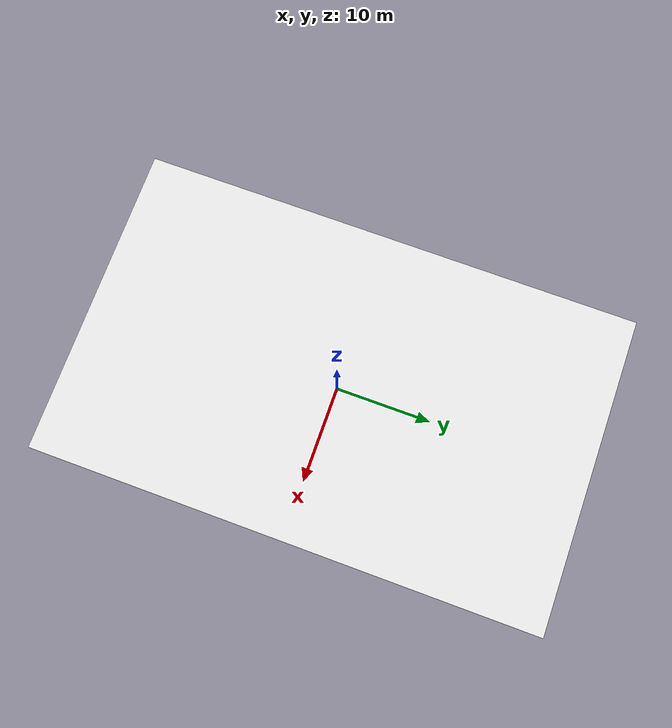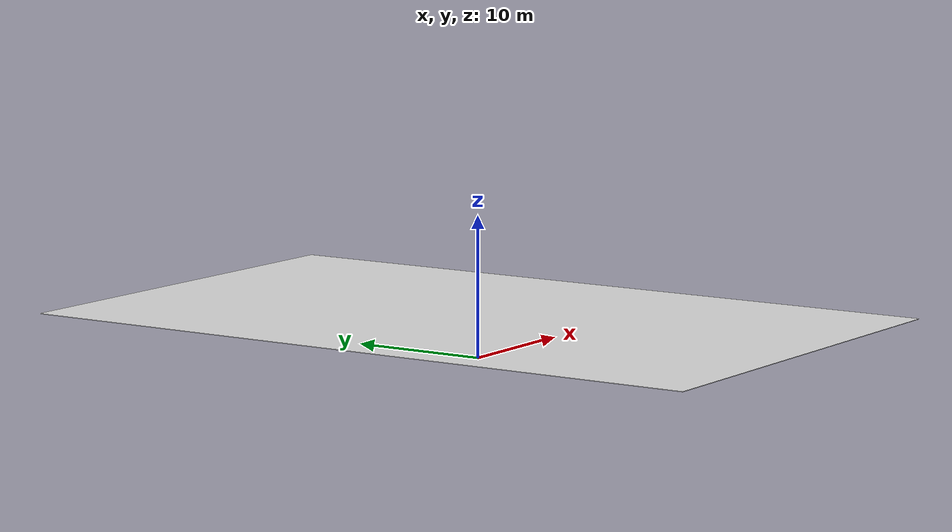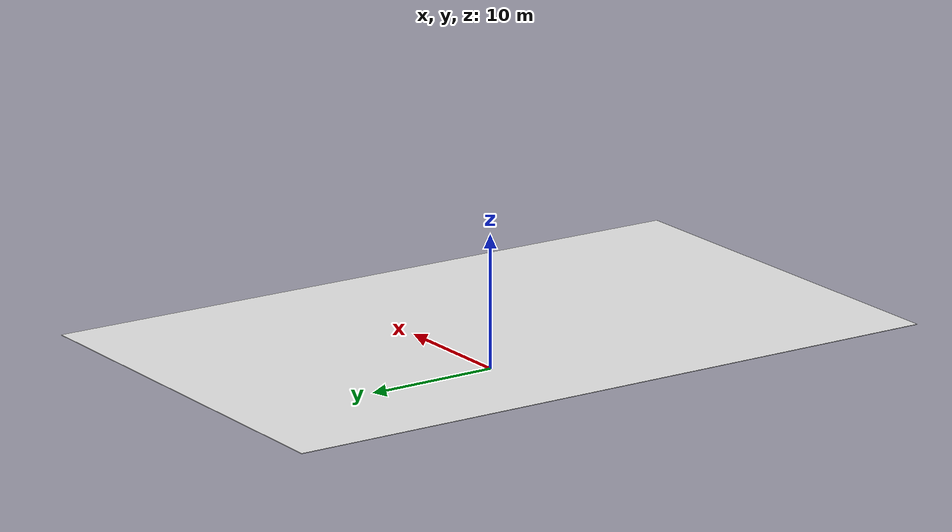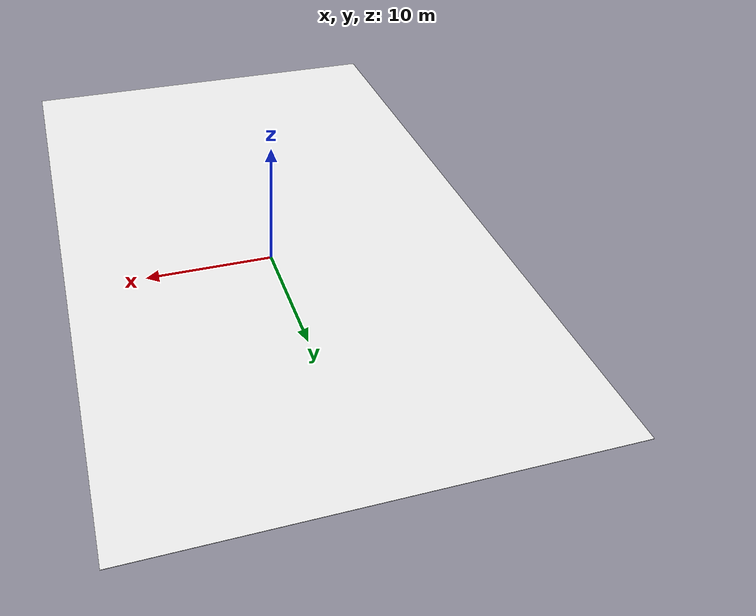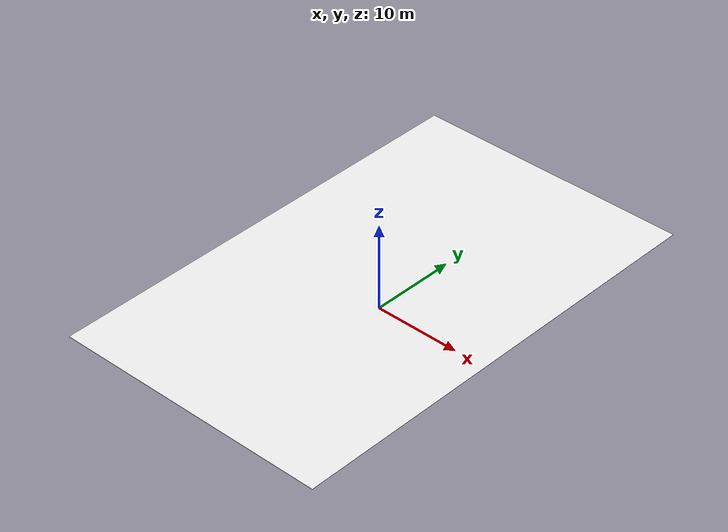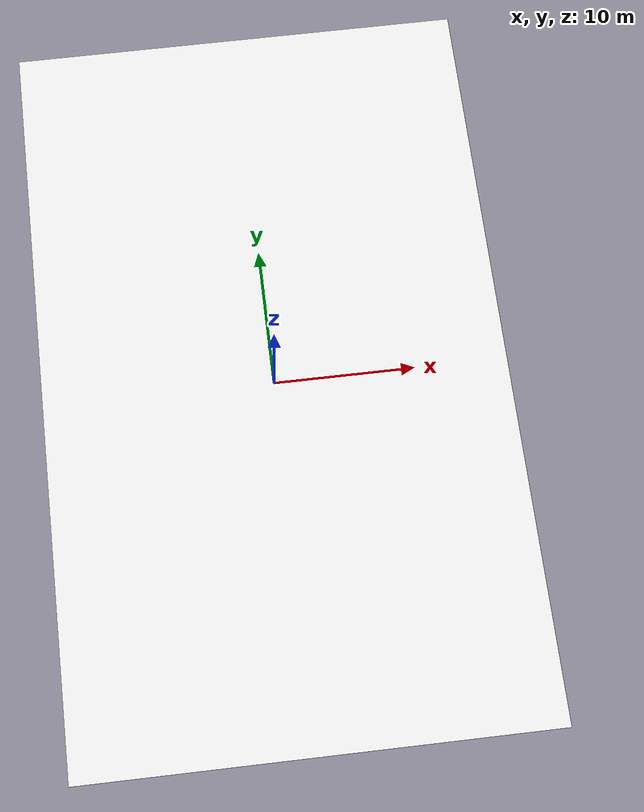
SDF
<?xml version='1.0' encoding='utf-8'?>
<sdf version="1.6">
  <model name="aws_robomaker_hospital_floor_01_ceiling">
    <static>true</static>
    <link name="link">
      <collision name="collision_1">
        <pose>0 0 2.95 0 0 0</pose>
        <geometry>
          <box>
            <size>32 52 0.04</size>
          </box>
        </geometry>
      </collision>
      <visual name="visual_1">
        <pose>0 0 2.95 0 0 0</pose>
        <geometry>
          <box>
            <size>32 52 0.04</size>
          </box>
        </geometry>
        <material>
          <ambient>0.93 0.93 0.93 1</ambient>
          <diffuse>0.93 0.93 0.93 1</diffuse>
          <specular>0.08 0.08 0.08 1</specular>
        </material>
      </visual>
    </link>
  </model>
</sdf>
